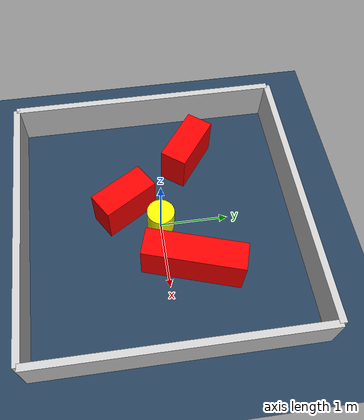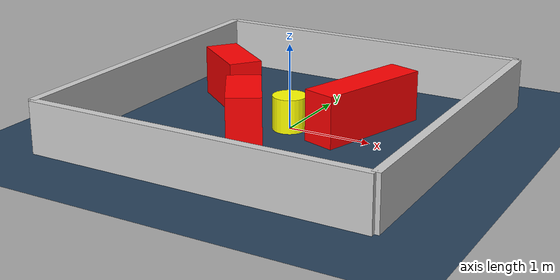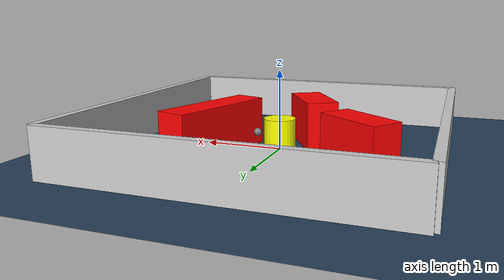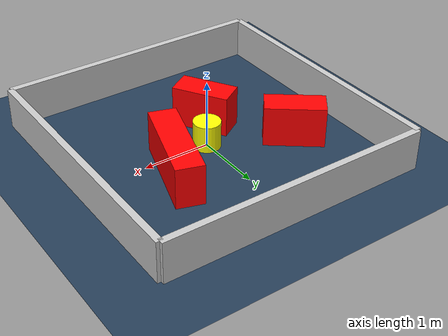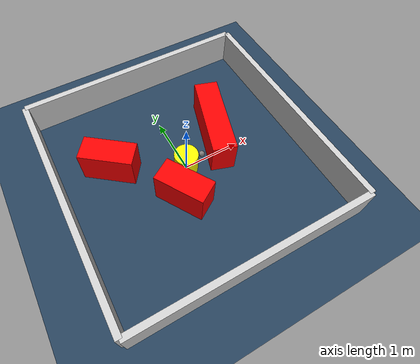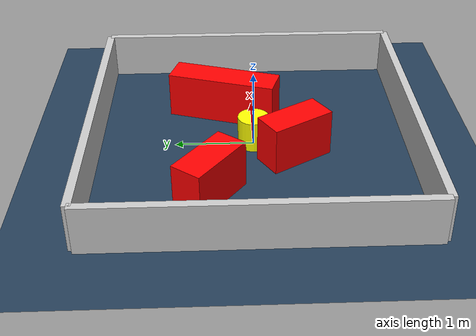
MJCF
<?xml version="1.0" ?>
<mujoco model="generated_environment">
  <option timestep="0.01" integrator="RK4" cone="elliptic"/>
  <default>
    <geom density="1"/>
  </default>
  <asset>
    <texture builtin="gradient" height="3072" rgb1="0.3 0.5 0.7" rgb2="0 0 0" type="skybox" width="512"/>
    <texture builtin="checker" height="300" mark="edge" markrgb="0.8 0.8 0.8" name="groundplane" rgb1="0.2 0.3 0.4" rgb2="0.1 0.2 0.3" type="2d" width="300"/>
    <material name="groundplane" reflectance="0.2" texrepeat="5 5" texture="groundplane" texuniform="true"/>
    <material name="robot" rgba="0.0 1.0 0.0 1"/>
  </asset>
  <worldbody>
    <light dir="0 0 -1" directional="true" pos="0 0 1.5"/>
    <geom condim="4" friction="1.0 0.005 0.001" material="groundplane" name="floor" size="0 0 0.05" type="plane"/>
    <body name="walls">
      <geom name="wall_1" condim="4" pos="-2.0 0.0 0.3" rgba="0.800000011920929 0.800000011920929 0.800000011920929 1.0" size="0.05 2.0 0.3" type="box"/>
      <geom name="wall_2" condim="4" pos="2.0 0.0 0.3" rgba="0.800000011920929 0.800000011920929 0.800000011920929 1.0" size="0.05 2.0 0.3" type="box"/>
      <geom name="wall_3" condim="4" pos="0.0 -2.0 0.3" rgba="0.800000011920929 0.800000011920929 0.800000011920929 1.0" size="2.0 0.05 0.3" type="box"/>
      <geom name="wall_4" condim="4" pos="0.0 2.0 0.3" rgba="0.800000011920929 0.800000011920929 0.800000011920929 1.0" size="2.0 0.05 0.3" type="box"/>
    </body>
    <body name="robot">
      <joint name="joint_x" type="slide" pos="0 0 0" axis="1 0 0"/>
      <joint name="joint_y" type="slide" pos="0 0 0" axis="0 1 0"/>
      <geom name="robot" type="sphere" pos="0.3 0.0 0.2" size="0.05" mass="5." friction="1.0 0.005 0.0001" condim="4" rgba="0.5 0.5 0.5 1.0"/>
      <site name="sensor_ball"/>
    </body>
    <body name="obstacle_movable_1">
      <geom name="obstacle_movable_1" condim="4" pos="0.0 0.0 0.2" euler="0 0 0.0" friction="1.0 0.005 0.001" rgba="1.0 1.0 0.0 1.0" size="0.2 0.2 0.0" type="cylinder" mass="0.1"/>
      <joint type="free"/>
    </body>
    <body name="obstacle_2_static">
      <geom name="obstacle_2_static" condim="4" pos="-0.3035326647588086 -0.4957484834796455 0.3" euler="0 0 301.69764908255854" friction="1.0 0.005 0.001" rgba="1 0 0 1" size="0.4198632277050752 0.2 0.3" type="box"/>
    </body>
    <body name="obstacle_3_static">
      <geom name="obstacle_3_static" condim="4" pos="-1.1064331140970067 0.5460152744064699 0.3" euler="0 0 322.63601380792977" friction="1.0 0.005 0.001" rgba="1 0 0 1" size="0.4342200184183048 0.2 0.3" type="box"/>
    </body>
    <body name="obstacle_4_static">
      <geom name="obstacle_4_static" condim="4" pos="0.743133884541038 0.3605958719003002 0.3" euler="0 0 72.40242226080763" friction="1.0 0.005 0.001" rgba="1 0 0 1" size="0.7102797640077099 0.2 0.3" type="box"/>
    </body>
  </worldbody>
  <actuator>
    <motor name="actuator_x" joint="joint_x" gear="1" ctrlrange="-1 1"/>
    <motor name="actuator_y" joint="joint_y" gear="1" ctrlrange="-1 1"/>
  </actuator>
</mujoco>
